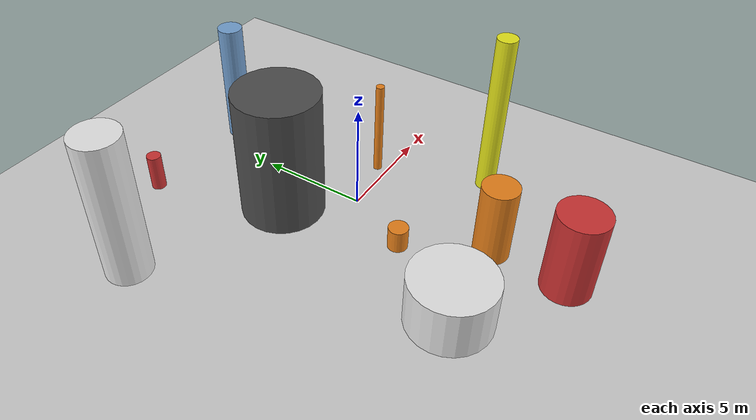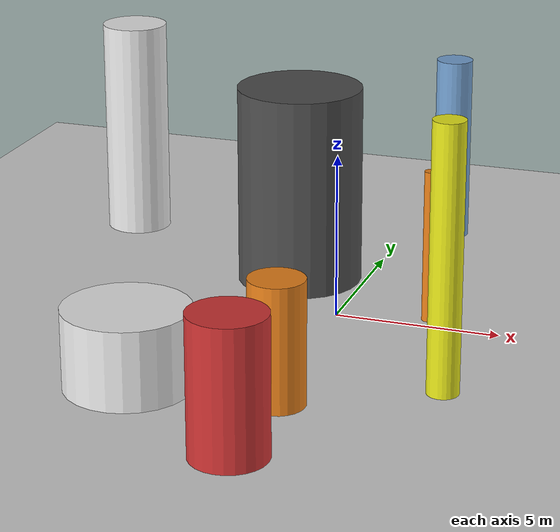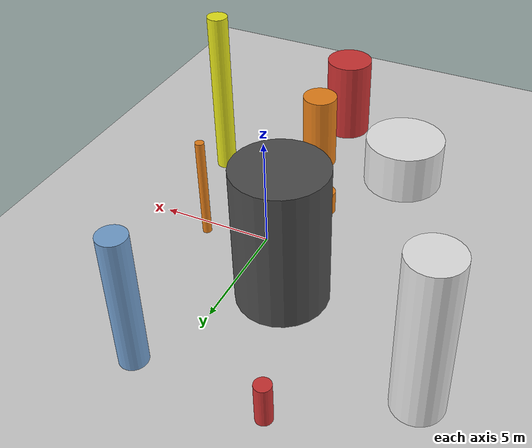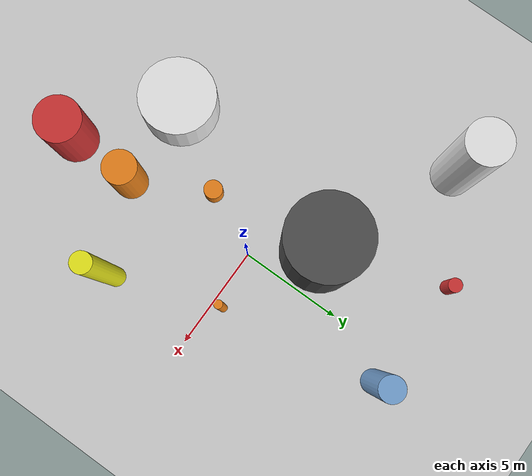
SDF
<?xml version='1.0'?>
<sdf version='1.6'>
  <world name='default'>
    <!-- Sun light -->
    <light name='sun' type='directional'>
      <cast_shadows>1</cast_shadows>
      <pose>0 0 10 0 0 0</pose>
      <diffuse>0.8 0.8 0.8 1</diffuse>
      <specular>0.2 0.2 0.2 1</specular>
      <attenuation>
        <range>1000</range>
        <constant>0.9</constant>
        <linear>0.01</linear>
        <quadratic>0.001</quadratic>
      </attenuation>
      <direction>-0.5 0.1 -0.9</direction>
    </light>

    <!-- Ground plane -->
    <model name='ground_plane'>
      <static>1</static>
      <link name='link'>
        <collision name='collision'>
          <geometry>
            <plane>
              <normal>0 0 1</normal>
              <size>100 100</size>
            </plane>
          </geometry>
          <surface>
            <contact>
              <collide_bitmask>65535</collide_bitmask>
              <ode/>
            </contact>
            <friction>
              <ode>
                <mu>100</mu>
                <mu2>50</mu2>
              </ode>
              <torsional><ode/></torsional>
            </friction>
            <bounce/>
          </surface>
          <max_contacts>10</max_contacts>
        </collision>
        <visual name='visual'>
          <cast_shadows>0</cast_shadows>
          <geometry>
            <plane>
              <normal>0 0 1</normal>
              <size>100 100</size>
            </plane>
          </geometry>
          <material>
            <script>
              <uri>file://media/materials/scripts/gazebo.material</uri>
              <n>Gazebo/Grey</n>
            </script>
          </material>
        </visual>
      </link>
    </model>

    <!-- Environment -->
    <magnetic_field>6e-06 2.3e-05 -4.2e-05</magnetic_field>
    <atmosphere type='adiabatic'/>
    <physics name='default_physics' default='0' type='ode'>
      <gravity>0 0 -9.8</gravity>
      <max_step_size>0.004</max_step_size>
      <real_time_factor>1</real_time_factor>
      <real_time_update_rate>250</real_time_update_rate>
    </physics>
    <scene>
      <ambient>0.4 0.4 0.4 1</ambient>
      <background>0.7 0.7 0.7 1</background>
      <shadows>1</shadows>
    </scene>
    <wind/>
    <spherical_coordinates>
      <surface_model>EARTH_WGS84</surface_model>
      <latitude_deg>0</latitude_deg>
      <longitude_deg>0</longitude_deg>
      <elevation>0</elevation>
      <heading_deg>0</heading_deg>
    </spherical_coordinates>

    <!-- ============ OBSTACLES (10) ============ -->
    <model name='obs_00'>
      <static>1</static>
      <link name='link'>
        <visual name='visual'>
          <geometry>
            <cylinder>
              <radius>1.8440</radius>
              <length>2.3417</length>
            </cylinder>
          </geometry>
          <material>
            <script>
              <n>Gazebo/White</n>
              <uri>file://media/materials/scripts/gazebo.material</uri>
            </script>
            <ambient>0.9 0.9 0.9 1</ambient>
          </material>
        </visual>
        <collision name='collision'>
          <geometry>
            <cylinder>
              <radius>1.8440</radius>
              <length>2.3417</length>
            </cylinder>
          </geometry>
          <max_contacts>10</max_contacts>
          <surface>
            <contact><ode/></contact>
            <bounce/>
            <friction>
              <ode><mu>1</mu><mu2>1</mu2></ode>
              <torsional><ode/></torsional>
            </friction>
          </surface>
        </collision>
      </link>
      <pose>-3.8875 -6.7360 1.1708 0 0 1.3817</pose>
    </model>

    <model name='obs_01'>
      <static>1</static>
      <link name='link'>
        <visual name='visual'>
          <geometry>
            <cylinder>
              <radius>0.2003</radius>
              <length>4.6650</length>
            </cylinder>
          </geometry>
          <material>
            <script>
              <n>Gazebo/Orange</n>
              <uri>file://media/materials/scripts/gazebo.material</uri>
            </script>
            <ambient>0.9 0.5 0.1 1</ambient>
          </material>
        </visual>
        <collision name='collision'>
          <geometry>
            <cylinder>
              <radius>0.2003</radius>
              <length>4.6650</length>
            </cylinder>
          </geometry>
          <max_contacts>10</max_contacts>
          <surface>
            <contact><ode/></contact>
            <bounce/>
            <friction>
              <ode><mu>1</mu><mu2>1</mu2></ode>
              <torsional><ode/></torsional>
            </friction>
          </surface>
        </collision>
      </link>
      <pose>2.6999 0.5380 2.3325 0 0 2.0223</pose>
    </model>

    <model name='obs_02'>
      <static>1</static>
      <link name='link'>
        <visual name='visual'>
          <geometry>
            <cylinder>
              <radius>0.8074</radius>
              <length>3.6486</length>
            </cylinder>
          </geometry>
          <material>
            <script>
              <n>Gazebo/Orange</n>
              <uri>file://media/materials/scripts/gazebo.material</uri>
            </script>
            <ambient>0.9 0.5 0.1 1</ambient>
          </material>
        </visual>
        <collision name='collision'>
          <geometry>
            <cylinder>
              <radius>0.8074</radius>
              <length>3.6486</length>
            </cylinder>
          </geometry>
          <max_contacts>10</max_contacts>
          <surface>
            <contact><ode/></contact>
            <bounce/>
            <friction>
              <ode><mu>1</mu><mu2>1</mu2></ode>
              <torsional><ode/></torsional>
            </friction>
          </surface>
        </collision>
      </link>
      <pose>0.3992 -6.5465 1.8243 0 0 3.0494</pose>
    </model>

    <model name='obs_03'>
      <static>1</static>
      <link name='link'>
        <visual name='visual'>
          <geometry>
            <cylinder>
              <radius>1.9346</radius>
              <length>6.2044</length>
            </cylinder>
          </geometry>
          <material>
            <script>
              <n>Gazebo/DarkGrey</n>
              <uri>file://media/materials/scripts/gazebo.material</uri>
            </script>
            <ambient>0.3 0.3 0.3 1</ambient>
          </material>
        </visual>
        <collision name='collision'>
          <geometry>
            <cylinder>
              <radius>1.9346</radius>
              <length>6.2044</length>
            </cylinder>
          </geometry>
          <max_contacts>10</max_contacts>
          <surface>
            <contact><ode/></contact>
            <bounce/>
            <friction>
              <ode><mu>1</mu><mu2>1</mu2></ode>
              <torsional><ode/></torsional>
            </friction>
          </surface>
        </collision>
      </link>
      <pose>-2.0753 2.7049 3.1022 0 0 2.5867</pose>
    </model>

    <model name='obs_04'>
      <static>1</static>
      <link name='link'>
        <visual name='visual'>
          <geometry>
            <cylinder>
              <radius>1.0964</radius>
              <length>3.9706</length>
            </cylinder>
          </geometry>
          <material>
            <script>
              <n>Gazebo/Red</n>
              <uri>file://media/materials/scripts/gazebo.material</uri>
            </script>
            <ambient>0.8 0.2 0.2 1</ambient>
          </material>
        </visual>
        <collision name='collision'>
          <geometry>
            <cylinder>
              <radius>1.0964</radius>
              <length>3.9706</length>
            </cylinder>
          </geometry>
          <max_contacts>10</max_contacts>
          <surface>
            <contact><ode/></contact>
            <bounce/>
            <friction>
              <ode><mu>1</mu><mu2>1</mu2></ode>
              <torsional><ode/></torsional>
            </friction>
          </surface>
        </collision>
      </link>
      <pose>0.2821 -9.9468 1.9853 0 0 1.2955</pose>
    </model>

    <model name='obs_05'>
      <static>1</static>
      <link name='link'>
        <visual name='visual'>
          <geometry>
            <cylinder>
              <radius>0.4638</radius>
              <length>7.8154</length>
            </cylinder>
          </geometry>
          <material>
            <script>
              <n>Gazebo/Yellow</n>
              <uri>file://media/materials/scripts/gazebo.material</uri>
            </script>
            <ambient>0.9 0.9 0.1 1</ambient>
          </material>
        </visual>
        <collision name='collision'>
          <geometry>
            <cylinder>
              <radius>0.4638</radius>
              <length>7.8154</length>
            </cylinder>
          </geometry>
          <max_contacts>10</max_contacts>
          <surface>
            <contact><ode/></contact>
            <bounce/>
            <friction>
              <ode><mu>1</mu><mu2>1</mu2></ode>
              <torsional><ode/></torsional>
            </friction>
          </surface>
        </collision>
      </link>
      <pose>4.4594 -4.4256 3.9077 0 0 2.3064</pose>
    </model>

    <model name='obs_06'>
      <static>1</static>
      <link name='link'>
        <visual name='visual'>
          <geometry>
            <cylinder>
              <radius>0.4529</radius>
              <length>1.0681</length>
            </cylinder>
          </geometry>
          <material>
            <script>
              <n>Gazebo/Orange</n>
              <uri>file://media/materials/scripts/gazebo.material</uri>
            </script>
            <ambient>0.9 0.5 0.1 1</ambient>
          </material>
        </visual>
        <collision name='collision'>
          <geometry>
            <cylinder>
              <radius>0.4529</radius>
              <length>1.0681</length>
            </cylinder>
          </geometry>
          <max_contacts>10</max_contacts>
          <surface>
            <contact><ode/></contact>
            <bounce/>
            <friction>
              <ode><mu>1</mu><mu2>1</mu2></ode>
              <torsional><ode/></torsional>
            </friction>
          </surface>
        </collision>
      </link>
      <pose>-1.4710 -3.0175 0.5341 0 0 3.0656</pose>
    </model>

    <model name='obs_07'>
      <static>1</static>
      <link name='link'>
        <visual name='visual'>
          <geometry>
            <cylinder>
              <radius>0.5832</radius>
              <length>5.9819</length>
            </cylinder>
          </geometry>
          <material>
            <script>
              <n>Gazebo/Blue</n>
              <uri>file://media/materials/scripts/gazebo.material</uri>
            </script>
            <ambient>0.447 0.624 0.812 1</ambient>
          </material>
        </visual>
        <collision name='collision'>
          <geometry>
            <cylinder>
              <radius>0.5832</radius>
              <length>5.9819</length>
            </cylinder>
          </geometry>
          <max_contacts>10</max_contacts>
          <surface>
            <contact><ode/></contact>
            <bounce/>
            <friction>
              <ode><mu>1</mu><mu2>1</mu2></ode>
              <torsional><ode/></torsional>
            </friction>
          </surface>
        </collision>
      </link>
      <pose>1.4010 8.1617 2.9910 0 0 1.1587</pose>
    </model>

    <model name='obs_08'>
      <static>1</static>
      <link name='link'>
        <visual name='visual'>
          <geometry>
            <cylinder>
              <radius>0.3384</radius>
              <length>1.7734</length>
            </cylinder>
          </geometry>
          <material>
            <script>
              <n>Gazebo/Red</n>
              <uri>file://media/materials/scripts/gazebo.material</uri>
            </script>
            <ambient>0.8 0.2 0.2 1</ambient>
          </material>
        </visual>
        <collision name='collision'>
          <geometry>
            <cylinder>
              <radius>0.3384</radius>
              <length>1.7734</length>
            </cylinder>
          </geometry>
          <max_contacts>10</max_contacts>
          <surface>
            <contact><ode/></contact>
            <bounce/>
            <friction>
              <ode><mu>1</mu><mu2>1</mu2></ode>
              <torsional><ode/></torsional>
            </friction>
          </surface>
        </collision>
      </link>
      <pose>-4.2118 8.5360 0.8867 0 0 2.0850</pose>
    </model>

    <model name='obs_09'>
      <static>1</static>
      <link name='link'>
        <visual name='visual'>
          <geometry>
            <cylinder>
              <radius>1.0341</radius>
              <length>6.9524</length>
            </cylinder>
          </geometry>
          <material>
            <script>
              <n>Gazebo/White</n>
              <uri>file://media/materials/scripts/gazebo.material</uri>
            </script>
            <ambient>0.9 0.9 0.9 1</ambient>
          </material>
        </visual>
        <collision name='collision'>
          <geometry>
            <cylinder>
              <radius>1.0341</radius>
              <length>6.9524</length>
            </cylinder>
          </geometry>
          <max_contacts>10</max_contacts>
          <surface>
            <contact><ode/></contact>
            <bounce/>
            <friction>
              <ode><mu>1</mu><mu2>1</mu2></ode>
              <torsional><ode/></torsional>
            </friction>
          </surface>
        </collision>
      </link>
      <pose>-8.8117 5.6960 3.4762 0 0 0.5186</pose>
    </model>

    <!-- GUI camera -->
    <gui fullscreen='0'>
      <camera name='user_camera'>
        <pose>-15 0 18 0 0.85 0.15</pose>
        <view_controller>orbit</view_controller>
        <projection_type>perspective</projection_type>
      </camera>
    </gui>
  </world>
</sdf>
